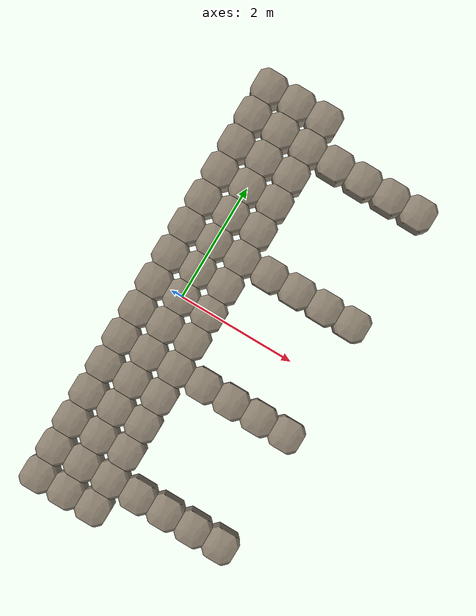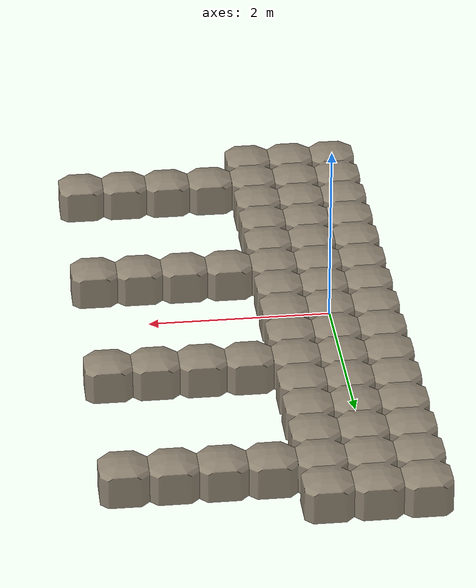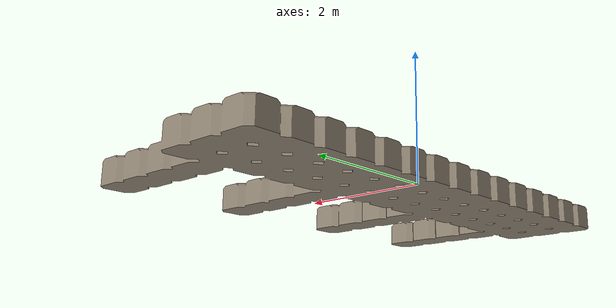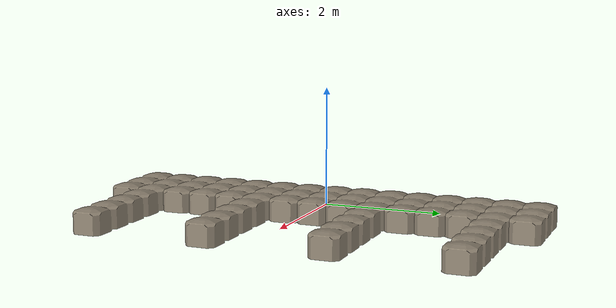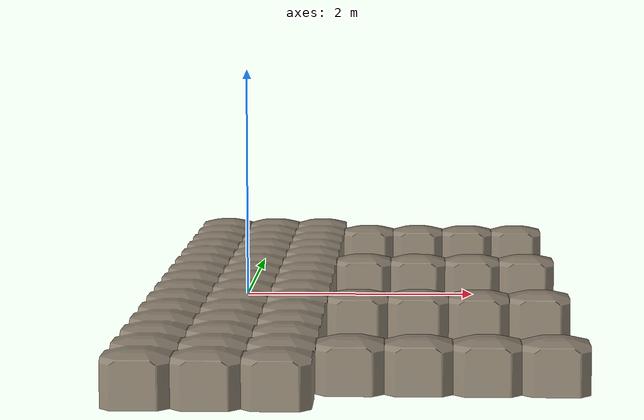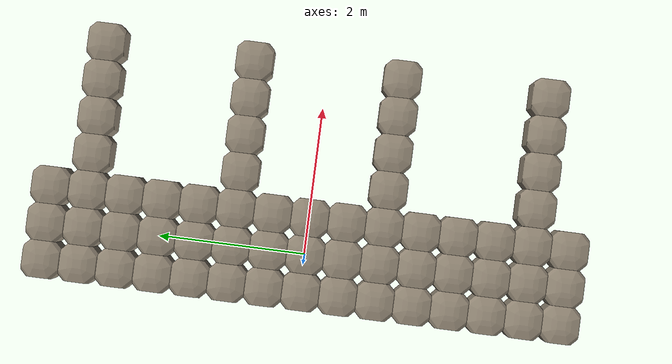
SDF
<?xml version="1.0"?>
<sdf version="1.6">
  <model name="Dock">
    <static>true</static>
    <link name="base_link">
      <visual name="dock">
        <geometry>
          <mesh>
            <uri>model://dock/assets/dock.stl</uri>
          </mesh>
        </geometry>
        <material>
          <ambient>0.34 0.31 0.27 1</ambient>
          <!-- Red color -->
          <diffuse>0.559642 0.515643 0.446934 1</diffuse>
          <specular>0.01 0.01 0.01 1</specular>
        </material>
      </visual>
      <collision name='base'>
        <geometry>
          <box>
            <size>1.51954 7.60376 0.406521</size>
          </box>
        </geometry>
      </collision>
      <collision name='tine1'>
        <pose>1.77361 3.02886 0 0 0 0</pose>
        <geometry>
          <box>
            <size>2.02606 0.506918 0.406521</size>
          </box>
        </geometry>
      </collision>
      <collision name='tine2'>
        <pose>1.77361 1.001188 0 0 0 0</pose>
        <geometry>
          <box>
            <size>2.02606 0.506918 0.406521</size>
          </box>
        </geometry>
      </collision>
      <collision name='tine3'>
        <pose>1.77361 -1.02648 0 0 0 0</pose>
        <geometry>
          <box>
            <size>2.02606 0.506918 0.406521</size>
          </box>
        </geometry>
      </collision>
      <collision name='tine4'>
        <pose>1.77361 -3.05416 0 0 0 0</pose>
        <geometry>
          <box>
            <size>2.02606 0.506918 0.406521</size>
          </box>
        </geometry>
      </collision>
    </link>
  </model>
</sdf>
